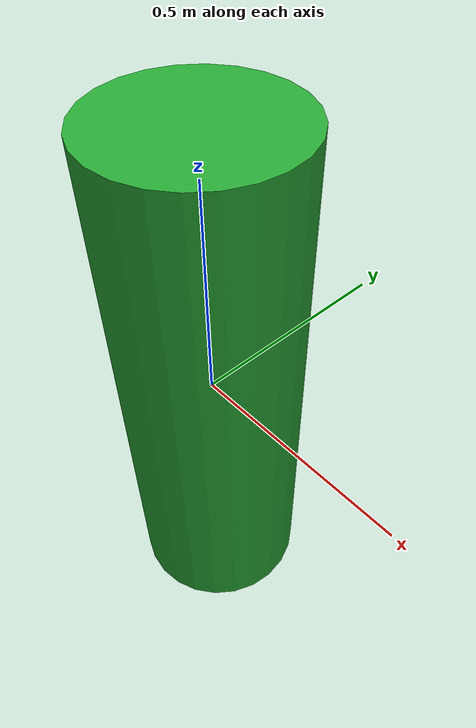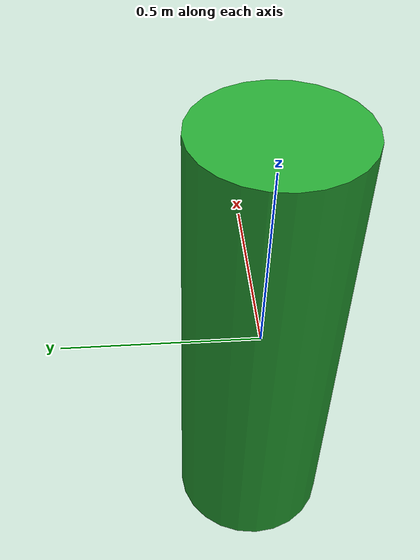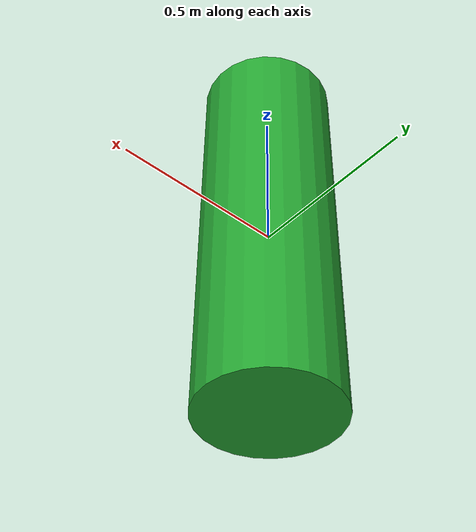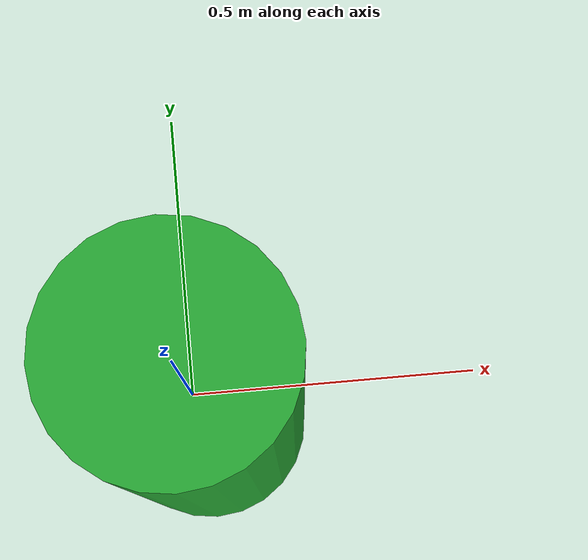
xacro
<?xml version="1.0"?>
<robot name="person"
	xmlns:xi="http://www.w3.org/2001/XInclude"
	xmlns:gazebo="http://playerstage.sourceforge.net/gazebo/xmlschema/#gz"
	xmlns:model="http://playerstage.sourceforge.net/gazebo/xmlschema/#model"
	xmlns:sensor="http://playerstage.sourceforge.net/gazebo/xmlschema/#sensor"
	xmlns:body="http://playerstage.sourceforge.net/gazebo/xmlschema/#body"
	xmlns:geom="http://playerstage.sourceforge.net/gazebo/xmlschema/#geom"
	xmlns:joint="http://playerstage.sourceforge.net/gazebo/xmlschema/#joint"
	xmlns:interface="http://playerstage.sourceforge.net/gazebo/xmlschema/#interface"
	xmlns:rendering="http://playerstage.sourceforge.net/gazebo/xmlschema/#rendering"
	xmlns:renderable="http://playerstage.sourceforge.net/gazebo/xmlschema/#renderable"
	xmlns:controller="http://playerstage.sourceforge.net/gazebo/xmlschema/#controller"
	xmlns:physics="http://playerstage.sourceforge.net/gazebo/xmlschema/#physics">

<link name="person">
		<visual>
			<geometry>
				<cylinder length="1.2" radius="0.2"/>
			</geometry>
		</visual>
		<collision>
			<geometry>
				<cylinder length="1.2" radius="0.2"/>
			</geometry>
		</collision>
		<inertial>
			<mass value="20"/>
			<inertia ixx="0.0" ixy="0.0" ixz="0.0" iyy="0.0" iyz="0.0" izz="0.0"/>
		</inertial>
	</link>

	<gazebo reference="person">
		<material>Gazebo/Green</material>
	</gazebo>

</robot>
